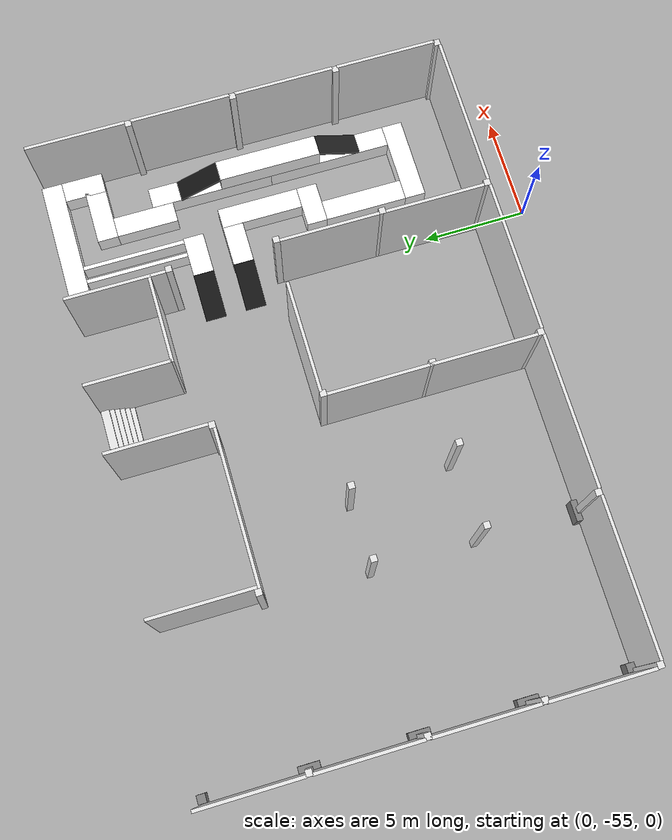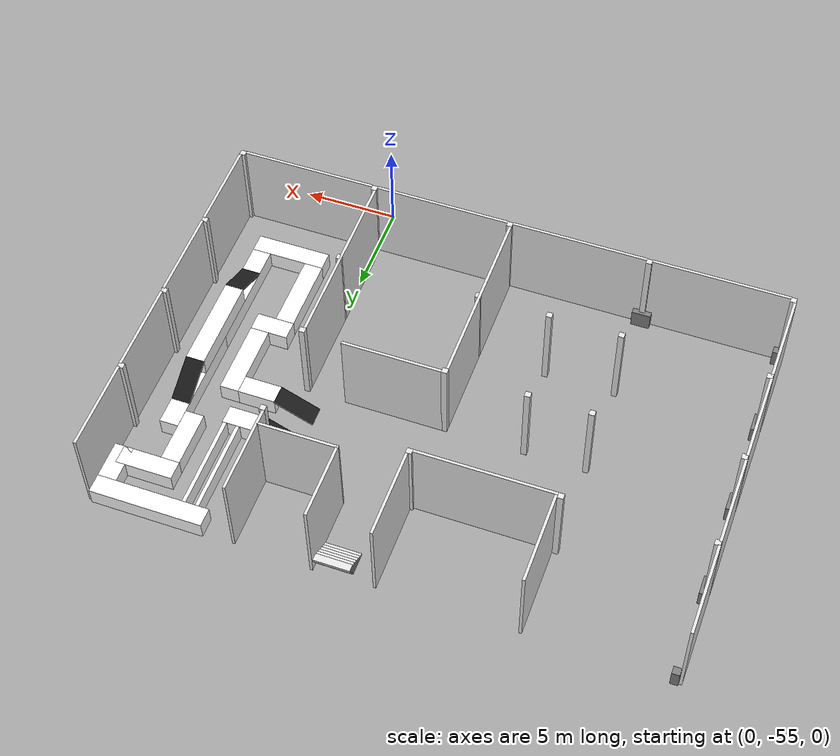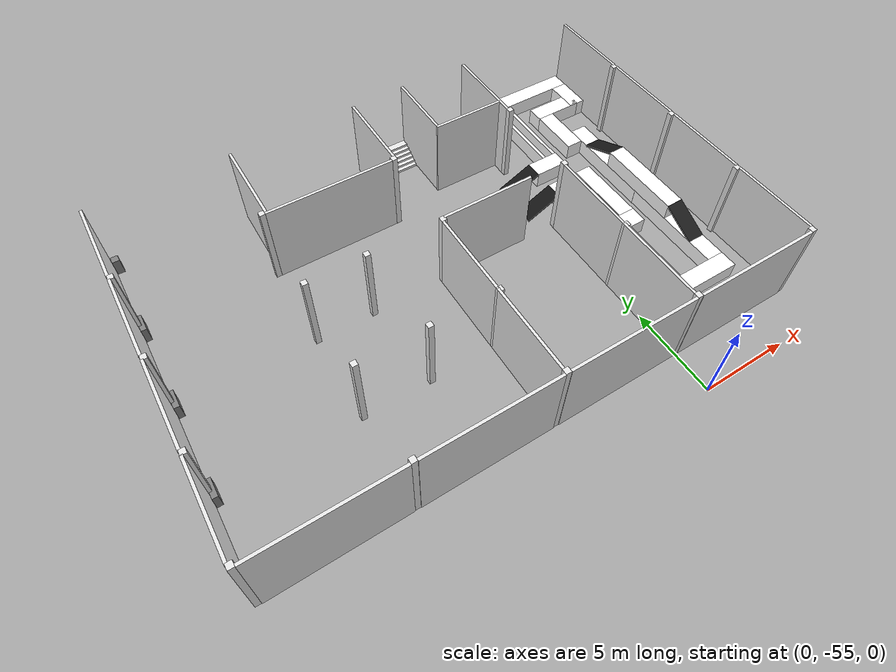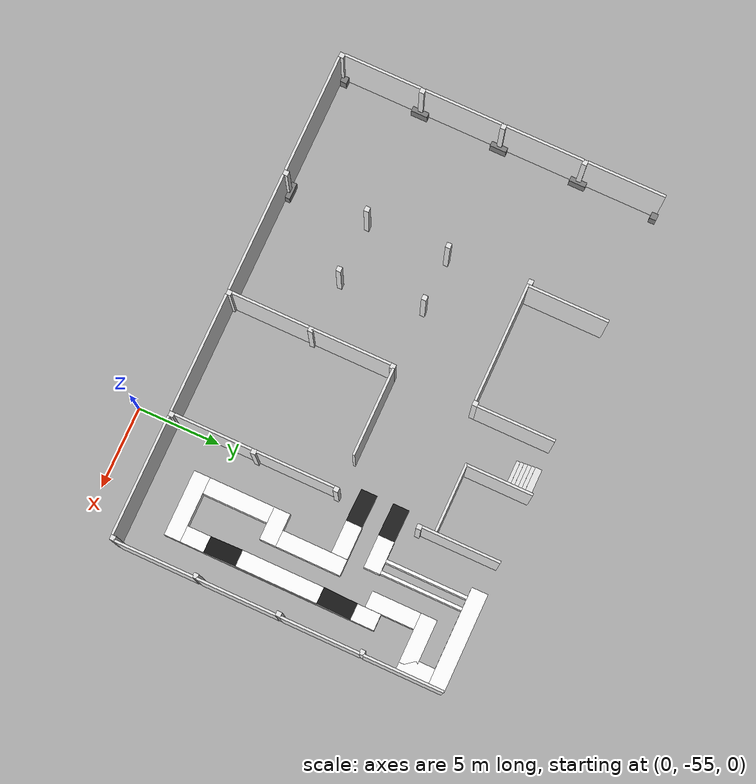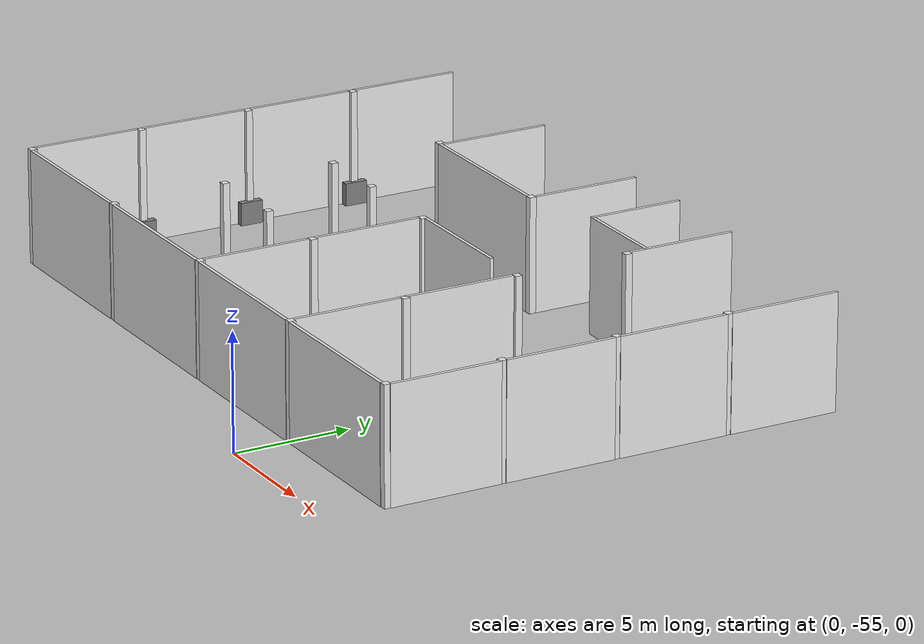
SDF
<sdf version="1.7">
 <model name="TYwalls">
  <pose>0 0 2.5 0 0 0</pose>
  <link name="Wall_S13">
   <pose>7.6 -35.0 0 0 0 1.5707</pose>
   <collision name="Wall_S13_Collision"><geometry><box><size>4.8 0.15 5</size></box></geometry></collision>
   <visual name="Wall_S13_Visual">
    <geometry><box><size>4.8 0.15 5</size></box></geometry>
    <material>
     <ambient>0.9 0.9 0.9 1</ambient>
     <diffuse>0.9 0.9 0.9 1</diffuse>
     <specular>0.9 0.9 0.9 1</specular>
    </material>
    <meta><layer>0</layer></meta>
   </visual>
  </link>
  <link name="Wall_S14">
   <pose>7.6 -40.0 0 0 0 1.5707</pose>
   <collision name="Wall_S14_Collision"><geometry><box><size>4.8 0.15 5</size></box></geometry></collision>
   <visual name="Wall_S14_Visual">
    <geometry><box><size>4.8 0.15 5</size></box></geometry>
    <material>
     <ambient>0.9 0.9 0.9 1</ambient>
     <diffuse>0.9 0.9 0.9 1</diffuse>
     <specular>0.9 0.9 0.9 1</specular>
    </material>
    <meta><layer>0</layer></meta>
   </visual>
  </link>
  <link name="Wall_S15">
   <pose>7.6 -45.0 0 0 0 1.5707</pose>
   <collision name="Wall_S15_Collision"><geometry><box><size>4.8 0.15 5</size></box></geometry></collision>
   <visual name="Wall_S15_Visual">
    <geometry><box><size>4.8 0.15 5</size></box></geometry>
    <material>
     <ambient>0.9 0.9 0.9 1</ambient>
     <diffuse>0.9 0.9 0.9 1</diffuse>
     <specular>0.9 0.9 0.9 1</specular>
    </material>
    <meta><layer>0</layer></meta>
   </visual>
  </link>
  <link name="Wall_S16">
   <pose>7.6 -50.0 0 0 0 1.5707</pose>
   <collision name="Wall_S16_Collision"><geometry><box><size>4.8 0.15 5</size></box></geometry></collision>
   <visual name="Wall_S16_Visual">
    <geometry><box><size>4.8 0.15 5</size></box></geometry>
    <material>
     <ambient>0.9 0.9 0.9 1</ambient>
     <diffuse>0.9 0.9 0.9 1</diffuse>
     <specular>0.9 0.9 0.9 1</specular>
    </material>
    <meta><layer>0</layer></meta>
   </visual>
  </link>
  <link name="Wall_N13">
   <pose>-22.6 -35.0 0 0 0 1.5707</pose>
   <collision name="Wall_N15_Collision"><geometry><box><size>4.8 0.15 5</size></box></geometry></collision>
   <visual name="Wall_N15_Visual">
    <geometry><box><size>4.8 0.15 5</size></box></geometry>
    <material>
     <ambient>0.9 0.9 0.9 1</ambient>
     <diffuse>0.9 0.9 0.9 1</diffuse>
     <specular>0.9 0.9 0.9 1</specular>
    </material>
    <meta><layer>0</layer></meta>
   </visual>
  </link>
  <link name="Wall_N16">
   <pose>-22.6 -40.0 0 0 0 1.5707</pose>
   <collision name="Wall_N16_Collision"><geometry><box><size>4.8 0.15 5</size></box></geometry></collision>
   <visual name="Wall_N16_Visual">
    <geometry><box><size>4.8 0.15 5</size></box></geometry>
    <material>
     <ambient>0.9 0.9 0.9 1</ambient>
     <diffuse>0.9 0.9 0.9 1</diffuse>
     <specular>0.9 0.9 0.9 1</specular>
    </material>
    <meta><layer>0</layer></meta>
   </visual>
  </link>
  <link name="Wall_N17">
   <pose>-22.6 -45.0 0 0 0 1.5707</pose>
   <collision name="Wall_N17_Collision"><geometry><box><size>4.8 0.15 5</size></box></geometry></collision>
   <visual name="Wall_N17_Visual">
    <geometry><box><size>4.8 0.15 5</size></box></geometry>
    <material>
     <ambient>0.9 0.9 0.9 1</ambient>
     <diffuse>0.9 0.9 0.9 1</diffuse>
     <specular>0.9 0.9 0.9 1</specular>
    </material>
    <meta><layer>0</layer></meta>
   </visual>
  </link>
  <link name="Wall_N18">
   <pose>-22.6 -50.0 0 0 0 1.5707</pose>
   <collision name="Wall_N18_Collision"><geometry><box><size>4.8 0.15 5</size></box></geometry></collision>
   <visual name="Wall_N18_Visual">
    <geometry><box><size>4.8 0.15 5</size></box></geometry>
    <material>
     <ambient>0.9 0.9 0.9 1</ambient>
     <diffuse>0.9 0.9 0.9 1</diffuse>
     <specular>0.9 0.9 0.9 1</specular>
    </material>
    <meta><layer>0</layer></meta>
   </visual>
  </link>
  <link name="Wall_W1">
   <pose>-18.75 -52.6 0 0 0 0</pose>
   <collision name="Wall_W1_Collision"><geometry><box><size>7.2 0.15 5</size></box></geometry></collision>
   <visual name="Wall_W1_Visual">
    <geometry><box><size>7.2 0.15 5</size></box></geometry>
    <material>
     <ambient>0.9 0.9 0.9 1</ambient>
     <diffuse>0.9 0.9 0.9 1</diffuse>
     <specular>0.9 0.9 0.9 1</specular>
    </material>
    <meta><layer>0</layer></meta>
   </visual>
  </link>
  <link name="Wall_W2">
   <pose>-11.25 -52.6 0 0 0 0</pose>
   <collision name="Wall_W2_Collision"><geometry><box><size>7.2 0.15 5</size></box></geometry></collision>
   <visual name="Wall_W2_Visual">
    <geometry><box><size>7.2 0.15 5</size></box></geometry>
    <material>
     <ambient>0.9 0.9 0.9 1</ambient>
     <diffuse>0.9 0.9 0.9 1</diffuse>
     <specular>0.9 0.9 0.9 1</specular>
    </material>
    <meta><layer>0</layer></meta>
   </visual>
  </link>
  <link name="Wall_W3">
   <pose>-3.75 -52.6 0 0 0 0</pose>
   <collision name="Wall_W3_Collision"><geometry><box><size>7.2 0.15 5</size></box></geometry></collision>
   <visual name="Wall_W3_Visual">
    <geometry><box><size>7.2 0.15 5</size></box></geometry>
    <material>
     <ambient>0.9 0.9 0.9 1</ambient>
     <diffuse>0.9 0.9 0.9 1</diffuse>
     <specular>0.9 0.9 0.9 1</specular>
    </material>
    <meta><layer>0</layer></meta>
   </visual>
  </link>
  <link name="Wall_W4">
   <pose>3.75 -52.6 0 0 0 0</pose>
   <collision name="Wall_W4_Collision"><geometry><box><size>7.2 0.15 5</size></box></geometry></collision>
   <visual name="Wall_W4_Visual">
    <geometry><box><size>7.2 0.15 5</size></box></geometry>
    <material>
     <ambient>0.9 0.9 0.9 1</ambient>
     <diffuse>0.9 0.9 0.9 1</diffuse>
     <specular>0.9 0.9 0.9 1</specular>
    </material>
    <meta><layer>0</layer></meta>
   </visual>
  </link>
  <link name="Wall_I28">
   <pose>-14.77 -35.075 0 0 0 1.5707</pose>
   <collision name="Wall_I28_Collision"><geometry><box><size>4.85 0.15 5</size></box></geometry></collision>
   <visual name="Wall_I28_Visual">
    <geometry><box><size>4.85 0.15 5</size></box></geometry>
    <material>
     <ambient>0.9 0.9 0.9 1</ambient>
     <diffuse>0.9 0.9 0.9 1</diffuse>
     <specular>0.9 0.9 0.9 1</specular>
    </material>
    <meta><layer>0</layer></meta>
   </visual>
  </link>
  <link name="Wall_I29">
   <pose>-7.425 -35.0 0 0 0 1.5707</pose>
   <collision name="Wall_I29_Collision"><geometry><box><size>4.7 0.15 5</size></box></geometry></collision>
   <visual name="Wall_I29_Visual">
    <geometry><box><size>4.7 0.15 5</size></box></geometry>
    <material>
     <ambient>0.9 0.9 0.9 1</ambient>
     <diffuse>0.9 0.9 0.9 1</diffuse>
     <specular>0.9 0.9 0.9 1</specular>
    </material>
    <meta><layer>0</layer></meta>
   </visual>
  </link>
  <link name="Wall_I30">
   <pose>-11.25 -37.575 0 0 0 0</pose>
   <collision name="Wall_I30_Collision"><geometry><box><size>7.2 0.15 5</size></box></geometry></collision>
   <visual name="Wall_I30_Visual">
    <geometry><box><size>7.2 0.15 5</size></box></geometry>
    <material>
     <ambient>0.9 0.9 0.9 1</ambient>
     <diffuse>0.9 0.9 0.9 1</diffuse>
     <specular>0.9 0.9 0.9 1</specular>
    </material>
    <meta><layer>0</layer></meta>
   </visual>
  </link>
  <link name="Wall_I31a">
   <pose>-0.075 -47.5 0 0 0 1.5707</pose>
   <collision name="Wall_I31a_Collision"><geometry><box><size>9.7 0.15 5</size></box></geometry></collision>
   <visual name="Wall_I31a_Visual">
    <geometry><box><size>9.7 0.15 5</size></box></geometry>
    <material>
     <ambient>0.9 0.9 0.9 1</ambient>
     <diffuse>0.9 0.9 0.9 1</diffuse>
     <specular>0.9 0.9 0.9 1</specular>
    </material>
    <meta><layer>0</layer></meta>
   </visual>
  </link>
  <link name="Wall_I31b">
   <pose>-0.075 -35. 0 0 0 1.5707</pose>
   <collision name="Wall_I31b_Collision"><geometry><box><size>4.7 0.15 5</size></box></geometry></collision>
   <visual name="Wall_I31b_Visual">
    <geometry><box><size>4.7 0.15 5</size></box></geometry>
    <material>
     <ambient>0.9 0.9 0.9 1</ambient>
     <diffuse>0.9 0.9 0.9 1</diffuse>
     <specular>0.9 0.9 0.9 1</specular>
    </material>
    <meta><layer>0</layer></meta>
   </visual>
  </link>
  <link name="Wall_I32">
   <pose>-7.575 -47.5 0 0 0 1.5707</pose>
   <collision name="Wall_I32_Collision"><geometry><box><size>9.7 0.15 5</size></box></geometry></collision>
   <visual name="Wall_I32_Visual">
    <geometry><box><size>9.7 0.15 5</size></box></geometry>
    <material>
     <ambient>0.9 0.9 0.9 1</ambient>
     <diffuse>0.9 0.9 0.9 1</diffuse>
     <specular>0.9 0.9 0.9 1</specular>
    </material>
    <meta><layer>0</layer></meta>
   </visual>
  </link>
  <link name="Wall_I33">
   <pose>-4.75 -42.425 0 0 0 0.0</pose>
   <collision name="Wall_I33_Collision"><geometry><box><size>5.3 0.15 5</size></box></geometry></collision>
   <visual name="Wall_I33_Visual">
    <geometry><box><size>5.3 0.15 5</size></box></geometry>
    <material>
     <ambient>0.9 0.9 0.9 1</ambient>
     <diffuse>0.9 0.9 0.9 1</diffuse>
     <specular>0.9 0.9 0.9 1</specular>
    </material>
    <meta><layer>0</layer></meta>
   </visual>
  </link>
  <link name="Wall_I34">
   <pose>-4.2 -34.55 0 0 0 1.5707</pose>
   <collision name="Wall_I34_Collision"><geometry><box><size>4.0 0.15 5</size></box></geometry></collision>
   <visual name="Wall_I34_Visual">
    <geometry><box><size>4.0 0.15 5</size></box></geometry>
    <material>
     <ambient>0.9 0.9 0.9 1</ambient>
     <diffuse>0.9 0.9 0.9 1</diffuse>
     <specular>0.9 0.9 0.9 1</specular>
    </material>
    <meta><layer>0</layer></meta>
   </visual>
  </link>
  <link name="Wall_I35">
   <pose>-2.175 -36.575 0 0 0 0.0</pose>
   <collision name="Wall_I35_Collision"><geometry><box><size>4.2 0.15 5</size></box></geometry></collision>
   <visual name="Wall_I35_Visual">
    <geometry><box><size>4.2 0.15 5</size></box></geometry>
    <material>
     <ambient>0.9 0.9 0.9 1</ambient>
     <diffuse>0.9 0.9 0.9 1</diffuse>
     <specular>0.9 0.9 0.9 1</specular>
    </material>
    <meta><layer>0</layer></meta>
   </visual>
  </link>
  <link name="column_82">
   <pose>-22.5 -37.5 0 0 0 0</pose>
   <visual name="column_82_visual">
    <geometry><box><size>0.3 0.3 5</size></box></geometry>
    <material>
     <ambient>0.9 0.9 0.9 1</ambient>
     <diffuse>0.9 0.9 0.9 1</diffuse>
     <specular>0.9 0.9 0.9 1</specular>
    </material>
    <meta><layer>0</layer></meta>
   </visual>
   <collision name="collision"><geometry><box><size>0.3 0.3 5</size></box></geometry></collision>
  </link>
  <link name="column_83">
   <pose>-15.0 -37.5 0 0 0 0</pose>
   <visual name="column_83_visual">
    <geometry><box><size>0.3 0.3 5</size></box></geometry>
    <material>
     <ambient>0.9 0.9 0.9 1</ambient>
     <diffuse>0.9 0.9 0.9 1</diffuse>
     <specular>0.9 0.9 0.9 1</specular>
    </material>
    <meta><layer>0</layer></meta>
   </visual>
   <collision name="collision"><geometry><box><size>0.3 0.3 5</size></box></geometry></collision>
  </link>
  <link name="column_84">
   <pose>-7.5 -37.5 0 0 0 0</pose>
   <visual name="column_84_visual">
    <geometry><box><size>0.3 0.3 5</size></box></geometry>
    <material>
     <ambient>0.9 0.9 0.9 1</ambient>
     <diffuse>0.9 0.9 0.9 1</diffuse>
     <specular>0.9 0.9 0.9 1</specular>
    </material>
    <meta><layer>0</layer></meta>
   </visual>
   <collision name="collision"><geometry><box><size>0.3 0.3 5</size></box></geometry></collision>
  </link>
  <link name="column_85">
   <pose>0 -37.5 0 0 0 0</pose>
   <visual name="column_85_visual">
    <geometry><box><size>0.3 0.3 5</size></box></geometry>
    <material>
     <ambient>0.9 0.9 0.9 1</ambient>
     <diffuse>0.9 0.9 0.9 1</diffuse>
     <specular>0.9 0.9 0.9 1</specular>
    </material>
    <meta><layer>0</layer></meta>
   </visual>
   <collision name="collision"><geometry><box><size>0.3 0.3 5</size></box></geometry></collision>
  </link>
  <link name="column_86">
   <pose>7.5 -37.5 0 0 -0 0</pose>
   <visual name="column_86_visual">
    <geometry><box><size>0.3 0.3 5</size></box></geometry>
    <material>
     <ambient>0.9 0.9 0.9 1</ambient>
     <diffuse>0.9 0.9 0.9 1</diffuse>
     <specular>0.9 0.9 0.9 1</specular>
    </material>
    <meta><layer>0</layer></meta>
   </visual>
   <collision name="collision"><geometry><box><size>0.3 0.3 5</size></box></geometry></collision>
  </link>
  <link name="column_87">
   <pose>-22.5 -42.5 0 0 0 0</pose>
   <visual name="column_87_visual">
    <geometry><box><size>0.3 0.3 5</size></box></geometry>
    <material>
     <ambient>0.9 0.9 0.9 1</ambient>
     <diffuse>0.9 0.9 0.9 1</diffuse>
     <specular>0.9 0.9 0.9 1</specular>
    </material>
    <meta><layer>0</layer></meta>
   </visual>
   <collision name="collision"><geometry><box><size>0.3 0.3 5</size></box></geometry></collision>
  </link>
  <link name="column_88">
   <pose>-15.0 -42.5 0 0 0 0</pose>
   <visual name="column_88_visual">
    <geometry><box><size>0.3 0.3 5</size></box></geometry>
    <material>
     <ambient>0.9 0.9 0.9 1</ambient>
     <diffuse>0.9 0.9 0.9 1</diffuse>
     <specular>0.9 0.9 0.9 1</specular>
    </material>
    <meta><layer>0</layer></meta>
   </visual>
   <collision name="collision"><geometry><box><size>0.3 0.3 5</size></box></geometry></collision>
  </link>
  <link name="column_88a">
   <pose>-11.75 -42.5 0 0 0 0</pose>
   <visual name="column_88a_visual">
    <geometry><box><size>0.3 0.3 5</size></box></geometry>
    <material>
     <ambient>0.9 0.9 0.9 1</ambient>
     <diffuse>0.9 0.9 0.9 1</diffuse>
     <specular>0.9 0.9 0.9 1</specular>
    </material>
    <meta><layer>0</layer></meta>
   </visual>
   <collision name="collision"><geometry><box><size>0.3 0.3 5</size></box></geometry></collision>
  </link>
  <link name="column_89">
   <pose>-7.5 -42.5 0 0 0 0</pose>
   <visual name="column_89_visual">
    <geometry><box><size>0.3 0.3 5</size></box></geometry>
    <material>
     <ambient>0.9 0.9 0.9 1</ambient>
     <diffuse>0.9 0.9 0.9 1</diffuse>
     <specular>0.9 0.9 0.9 1</specular>
    </material>
    <meta><layer>0</layer></meta>
   </visual>
   <collision name="collision"><geometry><box><size>0.3 0.3 5</size></box></geometry></collision>
  </link>
  <link name="column_90">
   <pose>0 -42.5 0 0 0 0</pose>
   <visual name="column_90_visual">
    <geometry><box><size>0.3 0.3 5</size></box></geometry>
    <material>
     <ambient>0.9 0.9 0.9 1</ambient>
     <diffuse>0.9 0.9 0.9 1</diffuse>
     <specular>0.9 0.9 0.9 1</specular>
    </material>
    <meta><layer>0</layer></meta>
   </visual>
   <collision name="collision"><geometry><box><size>0.3 0.3 5</size></box></geometry></collision>
  </link>
  <link name="column_91">
   <pose>7.5 -42.5 0 0 -0 0</pose>
   <visual name="column_91_visual">
    <geometry><box><size>0.3 0.3 5</size></box></geometry>
    <material>
     <ambient>0.9 0.9 0.9 1</ambient>
     <diffuse>0.9 0.9 0.9 1</diffuse>
     <specular>0.9 0.9 0.9 1</specular>
    </material>
    <meta><layer>0</layer></meta>
   </visual>
   <collision name="collision"><geometry><box><size>0.3 0.3 5</size></box></geometry></collision>
  </link>
  <link name="column_92">
   <pose>-22.5 -47.5 0 0 0 0</pose>
   <visual name="column_92_visual">
    <geometry><box><size>0.3 0.3 5</size></box></geometry>
    <material>
     <ambient>0.9 0.9 0.9 1</ambient>
     <diffuse>0.9 0.9 0.9 1</diffuse>
     <specular>0.9 0.9 0.9 1</specular>
    </material>
    <meta><layer>0</layer></meta>
   </visual>
   <collision name="collision"><geometry><box><size>0.3 0.3 5</size></box></geometry></collision>
  </link>
  <link name="column_93">
   <pose>-15.0 -47.5 0 0 0 0</pose>
   <visual name="column_93_visual">
    <geometry><box><size>0.3 0.3 5</size></box></geometry>
    <material>
     <ambient>0.9 0.9 0.9 1</ambient>
     <diffuse>0.9 0.9 0.9 1</diffuse>
     <specular>0.9 0.9 0.9 1</specular>
    </material>
    <meta><layer>0</layer></meta>
   </visual>
   <collision name="collision"><geometry><box><size>0.3 0.3 5</size></box></geometry></collision>
  </link>
  <link name="column_93a">
   <pose>-11.25 -47.5 0 0 0 0</pose>
   <visual name="column_93a_visual">
    <geometry><box><size>0.3 0.3 5</size></box></geometry>
    <material>
     <ambient>0.9 0.9 0.9 1</ambient>
     <diffuse>0.9 0.9 0.9 1</diffuse>
     <specular>0.9 0.9 0.9 1</specular>
    </material>
    <meta><layer>0</layer></meta>
   </visual>
   <collision name="collision"><geometry><box><size>0.3 0.3 5</size></box></geometry></collision>
  </link>
  <link name="column_94">
   <pose>-7.5 -47.5 0 0 0 0</pose>
   <visual name="column_94_visual">
    <geometry><box><size>0.3 0.3 5</size></box></geometry>
    <material>
     <ambient>0.9 0.9 0.9 1</ambient>
     <diffuse>0.9 0.9 0.9 1</diffuse>
     <specular>0.9 0.9 0.9 1</specular>
    </material>
    <meta><layer>0</layer></meta>
   </visual>
   <collision name="collision"><geometry><box><size>0.3 0.3 5</size></box></geometry></collision>
  </link>
  <link name="column_95">
   <pose>0 -47.5 0 0 0 0</pose>
   <visual name="column_95_visual">
    <geometry><box><size>0.3 0.3 5</size></box></geometry>
    <material>
     <ambient>0.9 0.9 0.9 1</ambient>
     <diffuse>0.9 0.9 0.9 1</diffuse>
     <specular>0.9 0.9 0.9 1</specular>
    </material>
    <meta><layer>0</layer></meta>
   </visual>
   <collision name="collision"><geometry><box><size>0.3 0.3 5</size></box></geometry></collision>
  </link>
  <link name="column_96">
   <pose>7.5 -47.5 0 0 -0 0</pose>
   <visual name="column_96_visual">
    <geometry><box><size>0.3 0.3 5</size></box></geometry>
    <material>
     <ambient>0.9 0.9 0.9 1</ambient>
     <diffuse>0.9 0.9 0.9 1</diffuse>
     <specular>0.9 0.9 0.9 1</specular>
    </material>
    <meta><layer>0</layer></meta>
   </visual>
   <collision name="collision"><geometry><box><size>0.3 0.3 5</size></box></geometry></collision>
  </link>
  <link name="column_97">
   <pose>-22.5 -52.5 0 0 0 0</pose>
   <visual name="column_97_visual">
    <geometry><box><size>0.3 0.3 5</size></box></geometry>
    <material>
     <ambient>0.9 0.9 0.9 1</ambient>
     <diffuse>0.9 0.9 0.9 1</diffuse>
     <specular>0.9 0.9 0.9 1</specular>
    </material>
    <meta><layer>0</layer></meta>
   </visual>
   <collision name="collision"><geometry><box><size>0.3 0.3 5</size></box></geometry></collision>
  </link>
  <link name="column_98">
   <pose>-15.0 -52.5 0 0 0 0</pose>
   <visual name="column_98_visual">
    <geometry><box><size>0.3 0.3 5</size></box></geometry>
    <material>
     <ambient>0.9 0.9 0.9 1</ambient>
     <diffuse>0.9 0.9 0.9 1</diffuse>
     <specular>0.9 0.9 0.9 1</specular>
    </material>
    <meta><layer>0</layer></meta>
   </visual>
   <collision name="collision"><geometry><box><size>0.3 0.3 5</size></box></geometry></collision>
  </link>
  <link name="column_99">
   <pose>-7.5 -52.5 0 0 0 0</pose>
   <visual name="column_99_visual">
    <geometry><box><size>0.3 0.3 5</size></box></geometry>
    <material>
     <ambient>0.9 0.9 0.9 1</ambient>
     <diffuse>0.9 0.9 0.9 1</diffuse>
     <specular>0.9 0.9 0.9 1</specular>
    </material>
    <meta><layer>0</layer></meta>
   </visual>
   <collision name="collision"><geometry><box><size>0.3 0.3 5</size></box></geometry></collision>
  </link>
  <link name="column_100">
   <pose>0 -52.5 0 0 0 0</pose>
   <visual name="column_100_visual">
    <geometry><box><size>0.3 0.3 5</size></box></geometry>
    <material>
     <ambient>0.9 0.9 0.9 1</ambient>
     <diffuse>0.9 0.9 0.9 1</diffuse>
     <specular>0.9 0.9 0.9 1</specular>
    </material>
    <meta><layer>0</layer></meta>
   </visual>
   <collision name="collision"><geometry><box><size>0.3 0.3 5</size></box></geometry></collision>
  </link>
  <link name="column_101">
   <pose>7.5 -52.5 0 0 -0 0</pose>
   <visual name="column_101_visual">
    <geometry><box><size>0.3 0.3 5</size></box></geometry>
    <material>
     <ambient>0.9 0.9 0.9 1</ambient>
     <diffuse>0.9 0.9 0.9 1</diffuse>
     <specular>0.9 0.9 0.9 1</specular>
    </material>
    <meta><layer>0</layer></meta>
   </visual>
   <collision name="collision"><geometry><box><size>0.3 0.3 5</size></box></geometry></collision>
  </link>
  <link name="base_01">
   <pose>-22.35 -37.5 -2 0 0 1.5707</pose>
   <visual name="base_011_visual">
    <geometry><box><size>1.0 0.3 1</size></box></geometry>
    <material>
     <ambient>0.5 0.5 0.5 1</ambient>
     <diffuse>0.5 0.5 0.5 1</diffuse>
     <specular>0.5 0.5 0.5 1</specular>
    </material>
    <meta><layer>0</layer></meta>
   </visual>
   <collision name="collision"><geometry><box><size>1.0 0.3 1</size></box></geometry></collision>
  </link>
  <link name="base_02">
   <pose>-22.35 -42.5 -2 0 0 1.5707</pose>
   <visual name="base_02_visual">
    <geometry><box><size>1.0 0.3 1</size></box></geometry>
    <material>
     <ambient>0.5 0.5 0.5 1</ambient>
     <diffuse>0.5 0.5 0.5 1</diffuse>
     <specular>0.5 0.5 0.5 1</specular>
    </material>
    <meta><layer>0</layer></meta>
   </visual>
   <collision name="collision"><geometry><box><size>1.0 0.3 1</size></box></geometry></collision>
  </link>
  <link name="base_03">
   <pose>-22.35 -47.5 -2 0 0 1.5707</pose>
   <visual name="base_03_visual">
    <geometry><box><size>1.0 0.3 1</size></box></geometry>
    <material>
     <ambient>0.5 0.5 0.5 1</ambient>
     <diffuse>0.5 0.5 0.5 1</diffuse>
     <specular>0.5 0.5 0.5 1</specular>
    </material>
    <meta><layer>0</layer></meta>
   </visual>
   <collision name="collision"><geometry><box><size>1.0 0.3 1</size></box></geometry></collision>
  </link>
  <link name="base_04">
   <pose>-22.3 -52.3 -2 0 0 1.5707</pose>
   <visual name="base_04_visual">
    <geometry><box><size>0.4 0.4 1</size></box></geometry>
    <material>
     <ambient>0.5 0.5 0.5 1</ambient>
     <diffuse>0.5 0.5 0.5 1</diffuse>
     <specular>0.5 0.5 0.5 1</specular>
    </material>
    <meta><layer>0</layer></meta>
   </visual>
   <collision name="collision"><geometry><box><size>0.4 0.4 1</size></box></geometry></collision>
  </link>
  <link name="base_05">
   <pose>-22.3 -32.7 -2 0 0 0</pose>
   <visual name="base_05_visual">
    <geometry><box><size>0.4 0.4 1</size></box></geometry>
    <material>
     <ambient>0.5 0.5 0.5 1</ambient>
     <diffuse>0.5 0.5 0.5 1</diffuse>
     <specular>0.5 0.5 0.5 1</specular>
    </material>
    <meta><layer>0</layer></meta>
   </visual>
   <collision name="collision"><geometry><box><size>0.4 0.4 1</size></box></geometry></collision>
  </link>
  <link name="base_06">
   <pose>-15.0 -52.35 -2 0 0 0</pose>
   <visual name="base_06_visual">
    <geometry><box><size>1.0 0.3 1</size></box></geometry>
    <material>
     <ambient>0.5 0.5 0.5 1</ambient>
     <diffuse>0.5 0.5 0.5 1</diffuse>
     <specular>0.5 0.5 0.5 1</specular>
    </material>
    <meta><layer>0</layer></meta>
   </visual>
   <collision name="collision"><geometry><box><size>1.0 0.3 1</size></box></geometry></collision>
  </link>
  <link name="step_02">
   <pose>-5.25 -32.80 -1.675 0 0 0</pose>
   <visual name="step_01_visual">
    <geometry><box><size>1.9 0.40 0.15</size></box></geometry>
    <material>
     <ambient>0.9 0.9 0.9 1</ambient>
     <diffuse>0.9 0.9 0.9 1</diffuse>
     <specular>0.9 0.9 0.9 1</specular>
    </material>
    <meta><layer>0</layer></meta>
   </visual>
   <collision name="collision"><geometry><box><size>1.9 0.4 0.15</size></box></geometry></collision>
  </link>
  <link name="step_03">
   <pose>-5.25 -32.95 -1.825 0 0 0</pose>
   <visual name="step_03_visual">
    <geometry><box><size>1.9 0.55 0.15</size></box></geometry>
    <material>
     <ambient>0.9 0.9 0.9 1</ambient>
     <diffuse>0.9 0.9 0.9 1</diffuse>
     <specular>0.9 0.9 0.9 1</specular>
    </material>
    <meta><layer>0</layer></meta>
   </visual>
   <collision name="collision"><geometry><box><size>1.9 0.55 0.15</size></box></geometry></collision>
  </link>
  <link name="step_04">
   <pose>-5.25 -33.10 -1.975 0 0 0</pose>
   <visual name="step_04_visual">
    <geometry><box><size>1.9 0.7 0.15</size></box></geometry>
    <material>
     <ambient>0.9 0.9 0.9 1</ambient>
     <diffuse>0.9 0.9 0.9 1</diffuse>
     <specular>0.9 0.9 0.9 1</specular>
    </material>
    <meta><layer>0</layer></meta>
   </visual>
   <collision name="collision"><geometry><box><size>1.9 0.7 0.15</size></box></geometry></collision>
  </link>
  <link name="step_05">
   <pose>-5.25 -33.25 -2.125 0 0 0</pose>
   <visual name="step_05_visual">
    <geometry><box><size>1.9 0.85 0.15</size></box></geometry>
    <material>
     <ambient>0.9 0.9 0.9 1</ambient>
     <diffuse>0.9 0.9 0.9 1</diffuse>
     <specular>0.9 0.9 0.9 1</specular>
    </material>
    <meta><layer>0</layer></meta>
   </visual>
   <collision name="collision"><geometry><box><size>1.9 0.85 0.15</size></box></geometry></collision>
  </link>
  <link name="step_06">
   <pose>-5.25 -33.40 -2.275 0 0 0</pose>
   <visual name="step_06_visual">
    <geometry><box><size>1.9 1.0 0.15</size></box></geometry>
    <material>
     <ambient>0.9 0.9 0.9 1</ambient>
     <diffuse>0.9 0.9 0.9 1</diffuse>
     <specular>0.9 0.9 0.9 1</specular>
    </material>
    <meta><layer>0</layer></meta>
   </visual>
   <collision name="collision"><geometry><box><size>1.9 1.0 0.15</size></box></geometry></collision>
  </link>
  <link name="step_07">
   <pose>-5.25 -33.55 -2.425 0 0 0</pose>
   <visual name="step_07_visual">
    <geometry><box><size>1.9 1.15 0.15</size></box></geometry>
    <material>
     <ambient>0.9 0.9 0.9 1</ambient>
     <diffuse>0.9 0.9 0.9 1</diffuse>
     <specular>0.9 0.9 0.9 1</specular>
    </material>
    <meta><layer>0</layer></meta>
   </visual>
   <collision name="collision"><geometry><box><size>1.9 1.15 0.15</size></box></geometry></collision>
  </link>
  <link name="ramp_01">
   <pose>2.0 -41 -2 0 0 0</pose>
   <visual name="ramp_01_visual">
    <geometry><box><size>2.0 1.0 1.0</size></box></geometry>
    <material>
     <diffuse>1.0 1.0 1.0</diffuse>
     <specular>1.0 1.0 1.0</specular>
     <pbr>
      <metal>
       <albedo_map>materials/textures/wood.jpg</albedo_map>
       <normal_map>materials/textures/wood.jpg</normal_map>
      </metal>
     </pbr>
    </material>
    <meta><layer>0</layer></meta>
   </visual>
   <collision name="collision"><geometry><box><size>2.0 1.0 1.0</size></box></geometry></collision>
  </link>
  <link name="ramp_02">
   <pose>3.5 -42.5 -2 0 0 1.57</pose>
   <visual name="ramp_02_visual">
    <geometry><box><size>4.0 1.0 1.0</size></box></geometry>
    <material>
     <diffuse>1.0 1.0 1.0</diffuse>
     <specular>1.0 1.0 1.0</specular>
     <pbr>
      <metal>
       <albedo_map>materials/textures/wood.jpg</albedo_map>
       <normal_map>materials/textures/wood.jpg</normal_map>
      </metal>
     </pbr>
    </material>
    <meta><layer>0</layer></meta>
   </visual>
   <collision name="collision"><geometry><box><size>4.0 1.0 1.0</size></box></geometry></collision>
  </link>
  <link name="ramp_03">
   <pose>3.0 -45.0 -2 0 0 0</pose>
   <visual name="ramp_03_visual">
    <geometry><box><size>2.0 1.0 1.0</size></box></geometry>
    <material>
     <diffuse>1.0 1.0 1.0</diffuse>
     <specular>1.0 1.0 1.0</specular>
     <pbr>
      <metal>
       <albedo_map>materials/textures/wood.jpg</albedo_map>
       <normal_map>materials/textures/wood.jpg</normal_map>
      </metal>
     </pbr>
    </material>
    <meta><layer>0</layer></meta>
   </visual>
   <collision name="collision"><geometry><box><size>2.0 1.0 1.0</size></box></geometry></collision>
  </link>
  <link name="ramp_04">
   <pose>2.5 -47.5 -2 0 0 1.57</pose>
   <visual name="ramp_04_visual">
    <geometry><box><size>4.0 1.0 1.0</size></box></geometry>
    <material>
     <diffuse>1.0 1.0 1.0</diffuse>
     <specular>1.0 1.0 1.0</specular>
     <pbr>
      <metal>
       <albedo_map>materials/textures/wood.jpg</albedo_map>
       <normal_map>materials/textures/wood.jpg</normal_map>
      </metal>
     </pbr>
    </material>
    <meta><layer>0</layer></meta>
   </visual>
   <collision name="collision"><geometry><box><size>4.0 1.0 1.0</size></box></geometry></collision>
  </link>
  <link name="ramp_05">
   <pose>4.0 -50.0 -2 0 0 0</pose>
   <visual name="ramp_05_visual">
    <geometry><box><size>4.0 1.0 1.0</size></box></geometry>
    <material>
     <diffuse>1.0 1.0 1.0</diffuse>
     <specular>1.0 1.0 1.0</specular>
     <pbr>
      <metal>
       <albedo_map>materials/textures/wood.jpg</albedo_map>
       <normal_map>materials/textures/wood.jpg</normal_map>
      </metal>
     </pbr>
    </material>
    <meta><layer>0</layer></meta>
   </visual>
   <collision name="collision"><geometry><box><size>4.0 1.0 1.0</size></box></geometry></collision>
  </link>
  <link name="ramp_06">
   <pose>5.5 -46.5 -2 0 0 1.57</pose>
   <visual name="ramp_06_visual">
    <geometry><box><size>6.0 1.0 1.0</size></box></geometry>
    <material>
     <diffuse>1.0 1.0 1.0</diffuse>
     <specular>1.0 1.0 1.0</specular>
     <pbr>
      <metal>
       <albedo_map>materials/textures/wood.jpg</albedo_map>
       <normal_map>materials/textures/wood.jpg</normal_map>
      </metal>
     </pbr>
    </material>
    <meta><layer>0</layer></meta>
   </visual>
   <collision name="collision"><geometry><box><size>6.0 1.0 1.0</size></box></geometry></collision>
  </link>
  <link name="ramp_07">
   <pose>5.5 -40.5 -2 0 0 1.57</pose>
   <visual name="ramp_07_visual">
    <geometry><box><size>6.0 1.0 1.0</size></box></geometry>
    <material>
     <diffuse>1.0 1.0 1.0</diffuse>
     <specular>1.0 1.0 1.0</specular>
     <pbr>
      <metal>
       <albedo_map>materials/textures/wood.jpg</albedo_map>
       <normal_map>materials/textures/wood.jpg</normal_map>
      </metal>
     </pbr>
    </material>
    <meta><layer>0</layer></meta>
   </visual>
   <collision name="collision"><geometry><box><size>6.0 1.0 1.0</size></box></geometry></collision>
  </link>
  <link name="ramp_08">
   <pose>4.5 -37 -2 0 0 1.57</pose>
   <visual name="ramp_08_visual">
    <geometry><box><size>3.0 1.0 1.0</size></box></geometry>
    <material>
     <diffuse>1.0 1.0 1.0</diffuse>
     <specular>1.0 1.0 1.0</specular>
     <pbr>
      <metal>
       <albedo_map>materials/textures/wood.jpg</albedo_map>
       <normal_map>materials/textures/wood.jpg</normal_map>
      </metal>
     </pbr>
    </material>
    <meta><layer>0</layer></meta>
   </visual>
   <collision name="collision"><geometry><box><size>3.0 1.0 1.0</size></box></geometry></collision>
  </link>
  <link name="ramp_09">
   <pose>5.5 -35 -2 0 0 0</pose>
   <visual name="ramp_09_visual">
    <geometry><box><size>3.0 1.0 1.0</size></box></geometry>
    <material>
     <diffuse>1.0 1.0 1.0</diffuse>
     <specular>1.0 1.0 1.0</specular>
     <pbr>
      <metal>
       <albedo_map>materials/textures/wood.jpg</albedo_map>
       <normal_map>materials/textures/wood.jpg</normal_map>
      </metal>
     </pbr>
    </material>
    <meta><layer>0</layer></meta>
   </visual>
   <collision name="collision"><geometry><box><size>3.0 1.0 1.0</size></box></geometry></collision>
  </link>
  <link name="ramp_10">
   <pose>7.0 -34.5 -2 0 0 1.57</pose>
   <visual name="ramp_10_visual">
    <geometry><box><size>2.0 1.0 1.0</size></box></geometry>
    <material>
     <diffuse>1.0 1.0 1.0</diffuse>
     <specular>1.0 1.0 1.0</specular>
     <pbr>
      <metal>
       <albedo_map>materials/textures/wood.jpg</albedo_map>
       <normal_map>materials/textures/wood.jpg</normal_map>
      </metal>
     </pbr>
    </material>
    <meta><layer>0</layer></meta>
   </visual>
   <collision name="collision"><geometry><box><size>2.0 1.0 1.0</size></box></geometry></collision>
  </link>
  <link name="ramp_11">
   <pose>4.5 -33 -2 0 0 0</pose>
   <visual name="ramp_11_visual">
    <geometry><box><size>6.0 1.0 1.0</size></box></geometry>
    <material>
     <diffuse>1.0 1.0 1.0</diffuse>
     <specular>1.0 1.0 1.0</specular>
     <pbr>
      <metal>
       <albedo_map>materials/textures/wood.jpg</albedo_map>
       <normal_map>materials/textures/wood.jpg</normal_map>
      </metal>
     </pbr>
    </material>
    <meta><layer>0</layer></meta>
   </visual>
   <collision name="collision"><geometry><box><size>6.0 1.0 1.0</size></box></geometry></collision>
  </link>
  <link name="ramp_12">
   <pose>2.15 -36 -2 0 0 1.57</pose>
   <visual name="ramp_12_visual">
    <geometry><box><size>5.0 0.2 1.0</size></box></geometry>
    <material>
     <diffuse>1.0 1.0 1.0</diffuse>
     <specular>1.0 1.0 1.0</specular>
     <pbr>
      <metal>
       <albedo_map>materials/textures/wood.jpg</albedo_map>
       <normal_map>materials/textures/wood.jpg</normal_map>
      </metal>
     </pbr>
    </material>
    <meta><layer>0</layer></meta>
   </visual>
   <collision name="collision"><geometry><box><size>5.0 0.2 1.0</size></box></geometry></collision>
  </link>
  <link name="ramp_13">
   <pose>2.85 -36 -2 0 0 1.57</pose>
   <visual name="ramp_13_visual">
    <geometry><box><size>5.0 0.2 1.0</size></box></geometry>
    <material>
     <diffuse>1.0 1.0 1.0</diffuse>
     <specular>1.0 1.0 1.0</specular>
     <pbr>
      <metal>
       <albedo_map>materials/textures/wood.jpg</albedo_map>
       <normal_map>materials/textures/wood.jpg</normal_map>
      </metal>
     </pbr>
    </material>
    <meta><layer>0</layer></meta>
   </visual>
   <collision name="collision"><geometry><box><size>5.0 0.2 1.0</size></box></geometry></collision>
  </link>
  <link name="ramp_14">
   <pose>2.0 -39 -2 0 0 0</pose>
   <visual name="ramp_14_visual">
    <geometry><box><size>2.0 1.0 1.0</size></box></geometry>
    <material>
     <diffuse>1.0 1.0 1.0</diffuse>
     <specular>1.0 1.0 1.0</specular>
     <pbr>
      <metal>
       <albedo_map>materials/textures/wood.jpg</albedo_map>
       <normal_map>materials/textures/wood.jpg</normal_map>
      </metal>
     </pbr>
    </material>
    <meta><layer>0</layer></meta>
   </visual>
   <collision name="collision"><geometry><box><size>2.0 1.0 1.0</size></box></geometry></collision>
  </link>
  <model name="rampon_1">
   <static>true</static>
   <pose>0 -39 -2.05 0 -0.45 0</pose>
   <link name="link">
    <collision name="collision"><geometry><box><size>2.3 1.0 .1</size></box></geometry></collision>
    <visual name="visual">
     <geometry><box><size>2.3 1.0 .1</size></box></geometry>
     <material>
      <ambient>0.1 0.1 0.1 1</ambient>
      <diffuse>0.1 0.1 0.1 1</diffuse>
      <specular>0.1 0.1 0.1 1</specular>
     </material>
    </visual>
   </link>
  </model>
  <model name="rampon_2">
   <static>true</static>
   <pose>0 -41 -2.05 0 -0.45 0</pose>
   <link name="link">
    <collision name="collision"><geometry><box><size>2.3 1.0 .1</size></box></geometry></collision>
    <visual name="visual">
     <geometry><box><size>2.3 1.0 .1</size></box></geometry>
     <material>
      <ambient>0.1 0.1 0.1 1</ambient>
      <diffuse>0.1 0.1 0.1 1</diffuse>
      <specular>0.1 0.1 0.1 1</specular>
     </material>
    </visual>
   </link>
  </model>
  <model name="rampon_3">
   <static>true</static>
   <pose>5.5 -40 -1.05 0 0.45 1.57</pose>
   <link name="link">
    <collision name="collision"><geometry><box><size>2.3 1.0 .1</size></box></geometry></collision>
    <visual name="visual">
     <geometry><box><size>2.3 1.0 .1</size></box></geometry>
     <material>
      <ambient>0.1 0.1 0.1 1</ambient>
      <diffuse>0.1 0.1 0.1 1</diffuse>
      <specular>0.1 0.1 0.1 1</specular>
     </material>
    </visual>
   </link>
  </model>
  <model name="rampon_4">
   <static>true</static>
   <pose>5.5 -47 -1.05 0 -0.45 1.57</pose>
   <link name="link">
    <collision name="collision"><geometry><box><size>2.3 1.0 .1</size></box></geometry></collision>
    <visual name="visual">
     <geometry><box><size>2.3 1.0 .1</size></box></geometry>
     <material>
      <ambient>0.1 0.1 0.1 1</ambient>
      <diffuse>0.1 0.1 0.1 1</diffuse>
      <specular>0.1 0.1 0.1 1</specular>
     </material>
    </visual>
   </link>
  </model>
  <model name="ramp_15">
   <static>true</static>
   <pose>5.5 -43.5 -1.0 0 0 1.57</pose>
   <link name="link">
    <collision name="collision"><geometry><box><size>5.0 1.0 1.0</size></box></geometry></collision>
    <visual name="visual">
     <geometry><box><size>5.0 1.0 1.0</size></box></geometry>
     <material>
      <diffuse>1.0 1.0 1.0</diffuse>
      <specular>1.0 1.0 1.0</specular>
      <pbr>
       <metal>
        <albedo_map>materials/textures/wood.jpg</albedo_map>
        <normal_map>materials/textures/wood.jpg</normal_map>
       </metal>
      </pbr>
     </material>
    </visual>
   </link>
  </model>
  <static>1</static>
 </model>
</sdf>
